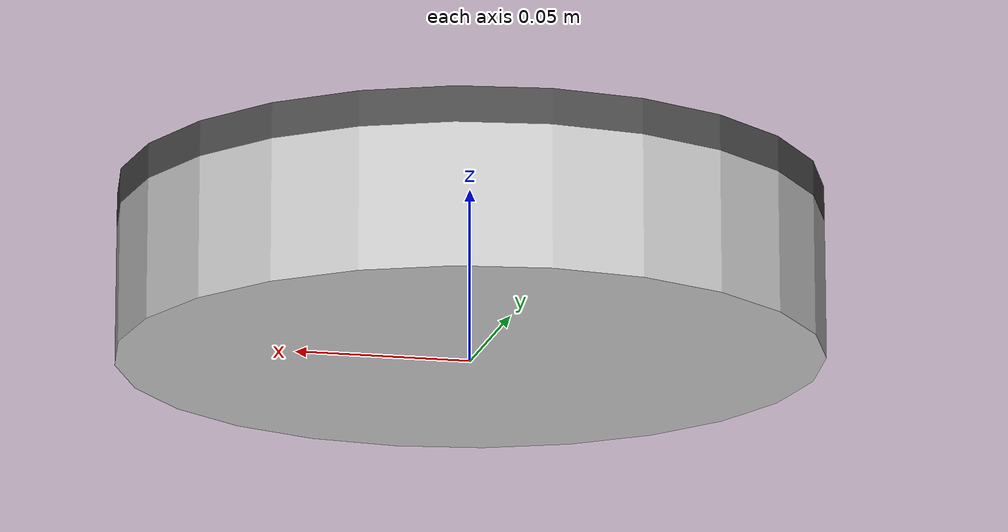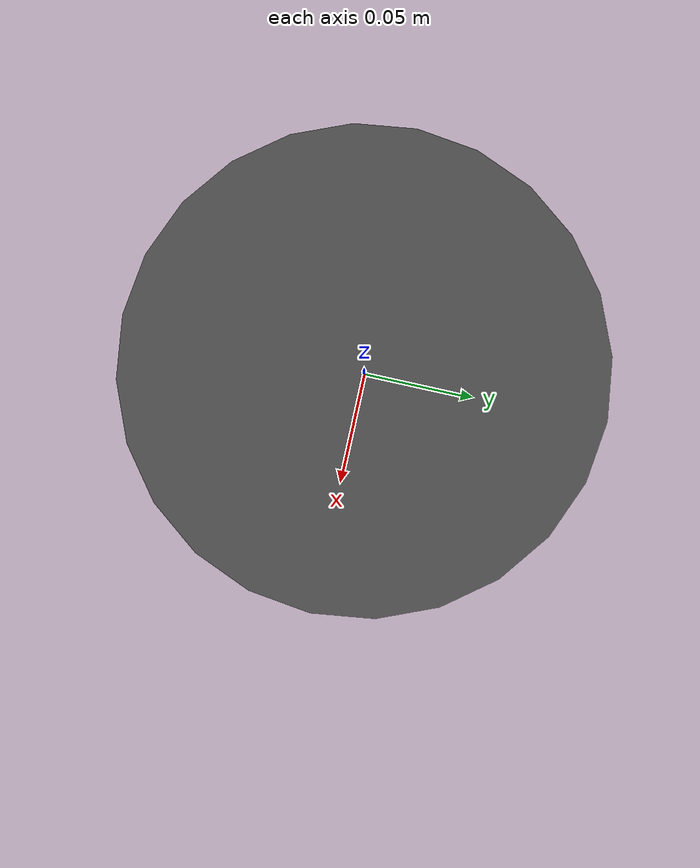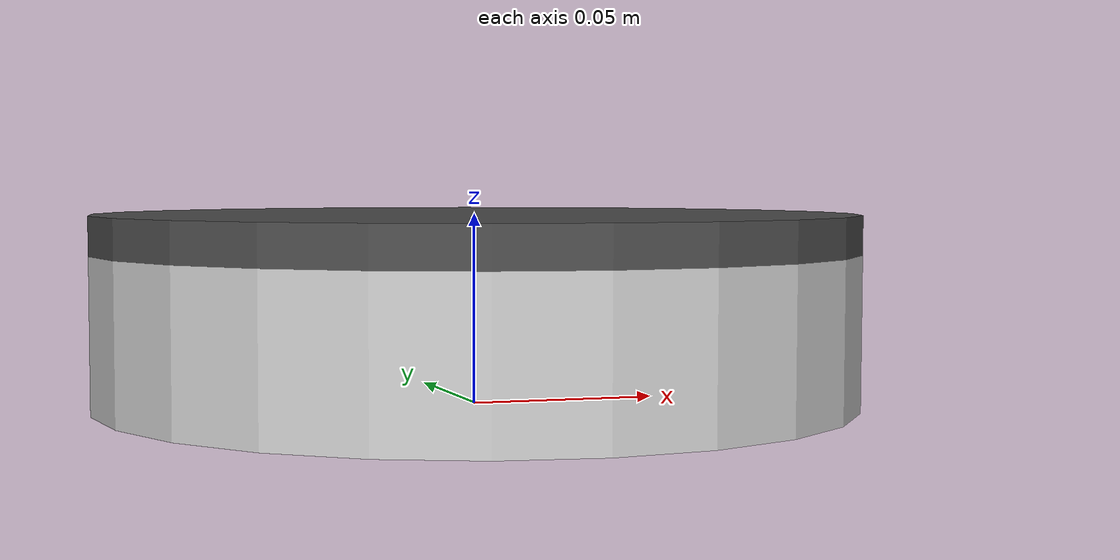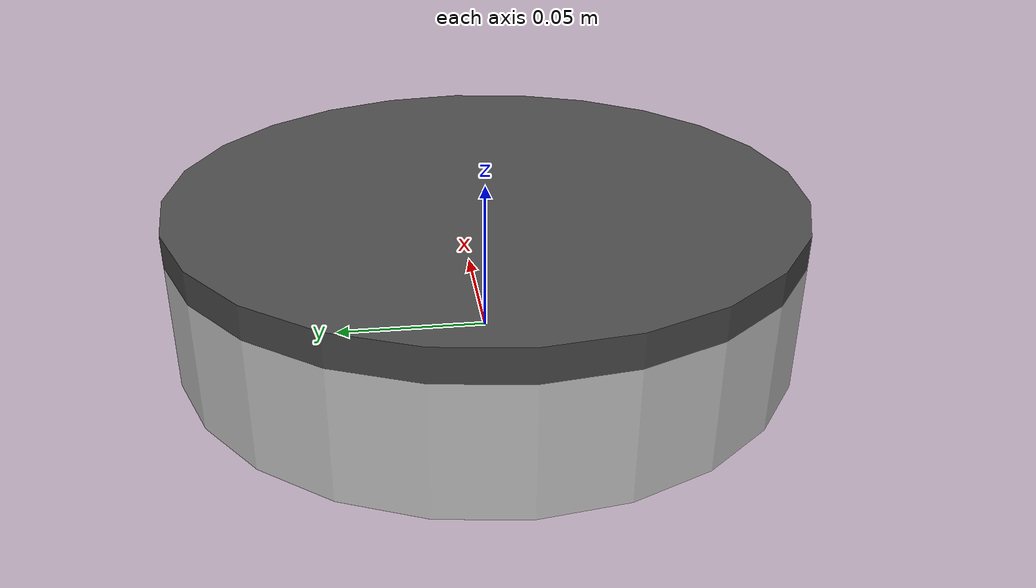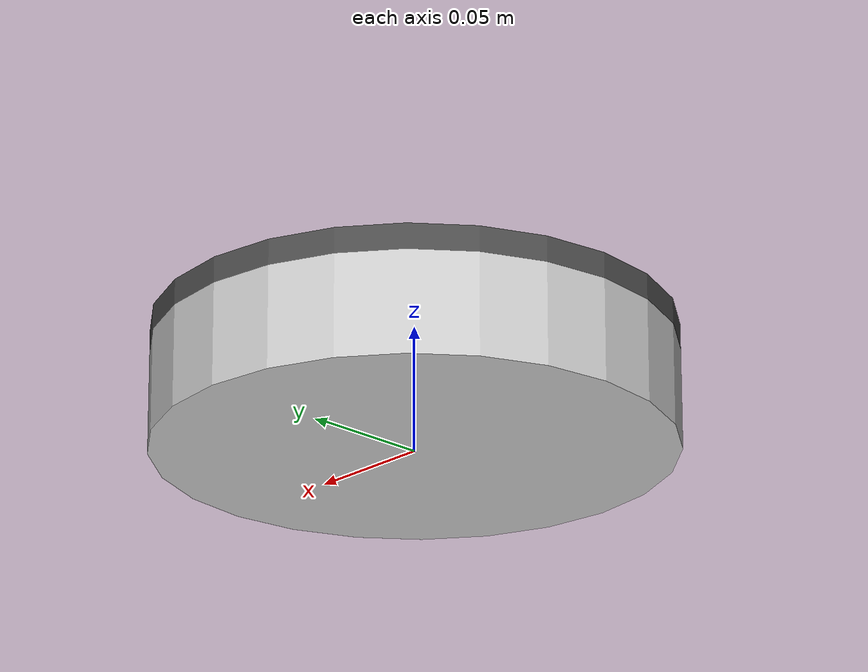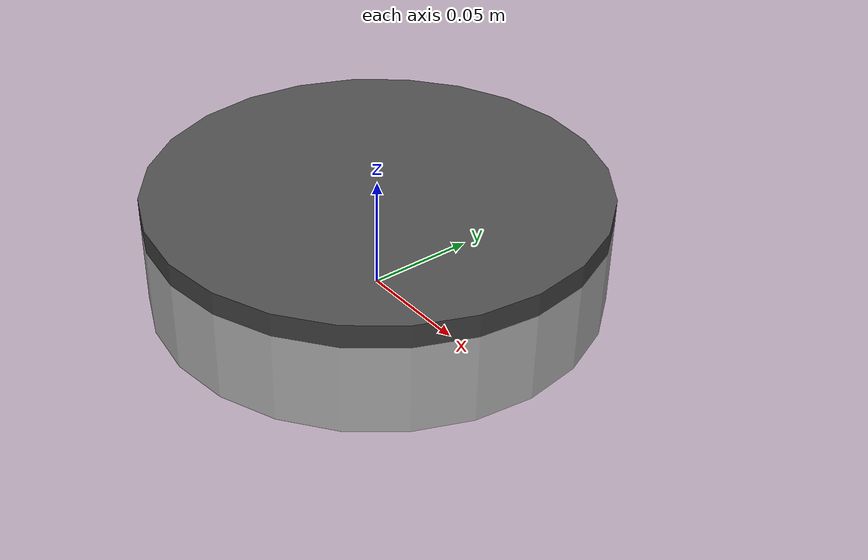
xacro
<?xml version="1.0"?>
<robot name="table" xmlns:xacro="http://ros.org/wiki/xacro">

    <transmission name="base_rotate_trans">
      <type>transmission_interface/SimpleTransmission</type>
      <joint name="base_rotate">
        <hardwareInterface>hardware_interface/VelocityJointInterface</hardwareInterface>
      </joint>
      <actuator name="base_rotate_motor">
        <hardwareInterface>hardware_interface/VelocityJointInterface</hardwareInterface>
        <mechanicalReduction>1</mechanicalReduction>
      </actuator>
    </transmission>

    <xacro:property name="base_radius" value="0.1" />

    <link name="world"></link>
    <link name="base">
      <visual>
        <origin xyz="0 0 ${.04/2}" rpy="0 0 0"/>
        <geometry>
          <cylinder length=".04" radius="${base_radius}"/>
        </geometry>
      </visual>
      <collision>
        <origin xyz="0 0 ${.04/2}" rpy="0 0 0"/>
        <geometry>
          <cylinder length=".04" radius="${base_radius}"/>
        </geometry>
      </collision>
      <inertial>
        <mass value="0.3"/>
        <inertia ixx="0.001" ixy="0.0" ixz="0.0" iyy="0.001" iyz="0.0" izz="0.001"/>
      </inertial>
    </link>
    <link name="upper_base">
      <visual>
	      <origin xyz="0 0 .045" rpy="0 0 0"/>
        <geometry>
          <cylinder length=".01" radius="${base_radius}"/>
        </geometry>
      </visual>
      <collision>
	      <origin xyz="0 0 .045" rpy="0 0 0"/>
        <geometry>
          <cylinder length=".01" radius="${base_radius}"/>
        </geometry>
      </collision>
      <inertial>
        <mass value="0.3"/>
        <inertia ixx="0.001" ixy="0.0" ixz="0.0" iyy="0.001" iyz="0.0" izz="0.001"/>
      </inertial>
    </link>

    <!-- joints -->
    <joint name="base_joint" type="fixed">
      <origin xyz="0 0 0" rpy="0 0 0"/>
      <parent link="world"/>
      <child link="base"/>
    </joint>
    <joint name="base_rotate" type="continuous">
      <origin xyz="0 0 0" rpy="0 0 0"/>
      <parent link="base"/>
      <child link="upper_base"/>
      <axis xyz="0 0 1"/>
    </joint>

  <gazebo>
    <plugin name="gazebo_ros_control" filename="libgazebo_ros_control.so">
      <robotSimType>gazebo_ros_control/DefaultRobotHWSim</robotSimType>
    </plugin>
  </gazebo>

  <gazebo reference="base">
    <material>Gazebo/LightGrey</material>
  </gazebo>
  <gazebo reference="upper_base">
    <material>Gazebo/DarkGrey</material>
  </gazebo>

</robot>
